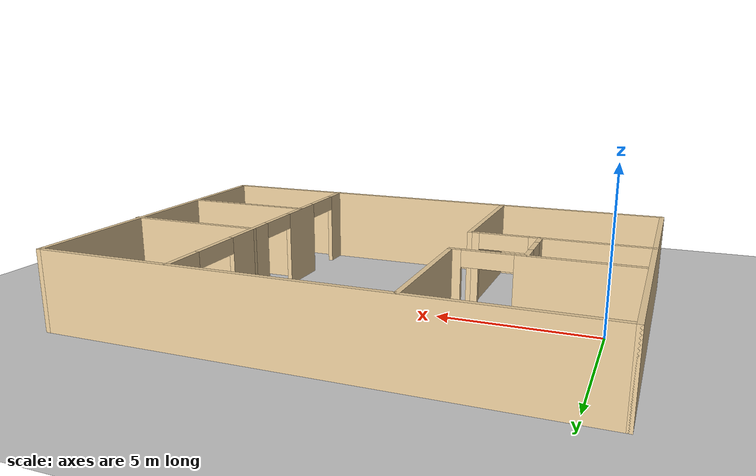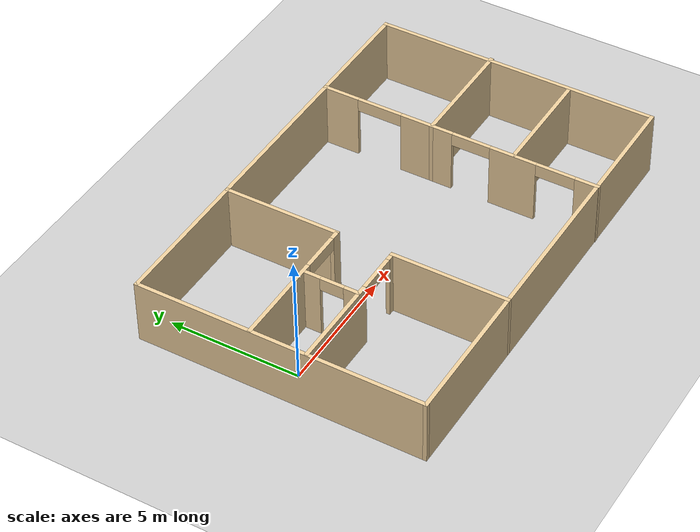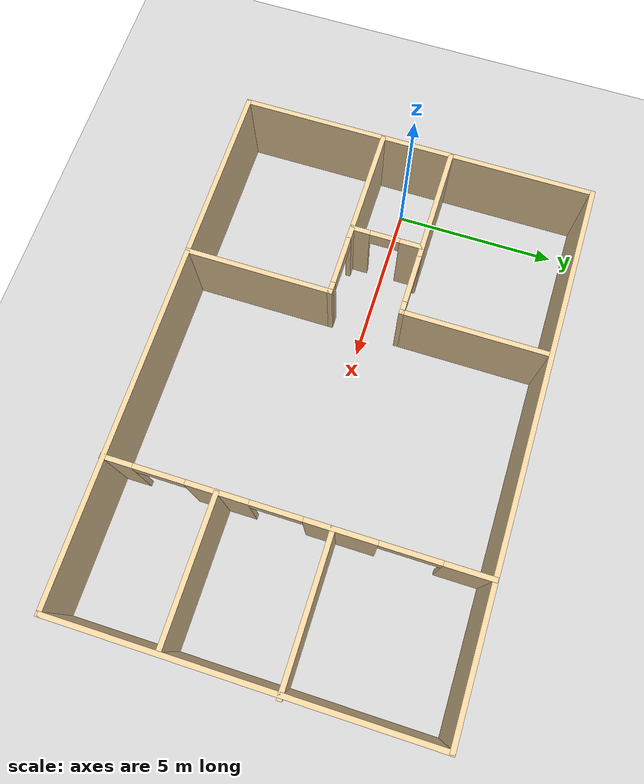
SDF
<sdf version="1.6">
 <world name="default">
  <light name="sun" type="directional">
   <pose>0 0 10 0 -0 0</pose>
   <diffuse>0.8 0.8 0.8 1</diffuse>
   <specular>0.2 0.2 0.2 1</specular>
   <attenuation>
    <range>1000</range>
    <constant>0.9</constant>
    <linear>0.01</linear>
    <quadratic>0.001</quadratic>
   </attenuation>
   <direction>-0.5 0.1 -0.9</direction>
  </light>
  <model name="ground_plane">
   <static>1</static>
   <link name="link">
    <collision name="collision">
     <geometry><plane><normal>0 0 1</normal><size>100 100</size></plane></geometry>
     <surface>
      <contact><collide_bitmask>65535</collide_bitmask></contact>
      <friction><ode><mu>100</mu><mu2>50</mu2></ode></friction>
     </surface>
    </collision>
    <visual name="visual">
     <cast_shadows>0</cast_shadows>
     <geometry><plane><normal>0 0 1</normal><size>100 100</size></plane></geometry>
     <material>
      <script><uri>file://media/materials/scripts/gazebo.material</uri><name>Gazebo/Grey</name></script>
     </material>
    </visual>
   </link>
  </model>
  <gravity>0 0 -9.8</gravity>
  <magnetic_field>6e-06 2.3e-05 -4.2e-05</magnetic_field>
  <atmosphere type="adiabatic"/>
  <physics name="default_physics" default="0" type="ode">
   <max_step_size>0.001</max_step_size>
   <real_time_factor>1</real_time_factor>
   <real_time_update_rate>1000</real_time_update_rate>
  </physics>
  <scene><ambient>0.4 0.4 0.4 1</ambient><background>0.7 0.7 0.7 1</background><shadows>1</shadows></scene>
  <spherical_coordinates>
   <surface_model>EARTH_WGS84</surface_model>
   <latitude_deg>0</latitude_deg>
   <longitude_deg>0</longitude_deg>
   <elevation>0</elevation>
   <heading_deg>0</heading_deg>
  </spherical_coordinates>
  <model name="home01">
   <pose>7 0 0 0 -0 0</pose>
   <link name="Wall_10">
    <pose>-5.37768 1.06753 0 0 -0 3.14159</pose>
    <visual name="Wall_10_Visual_0">
     <pose>-2.5478 0 1.25 0 -0 0</pose>
     <geometry><box><size>0.404399 0.15 2.5</size></box></geometry>
     <material>
      <script><uri>file://media/materials/scripts/gazebo.material</uri><name>Gazebo/Grey</name></script>
      <ambient>0.921569 0.807843 0.615686 1</ambient>
     </material>
     <meta><layer>0</layer></meta>
    </visual>
    <collision name="Wall_10_Collision_0">
     <geometry><box><size>0.404399 0.15 2.5</size></box></geometry>
     <pose>-2.5478 0 1.25 0 -0 0</pose>
    </collision>
    <visual name="Wall_10_Visual_1">
     <pose>0.9522 0 1.25 0 -0 0</pose>
     <geometry><box><size>3.5956 0.15 2.5</size></box></geometry>
     <material>
      <script><uri>file://media/materials/scripts/gazebo.material</uri><name>Gazebo/Grey</name></script>
      <ambient>0.921569 0.807843 0.615686 1</ambient>
     </material>
     <meta><layer>0</layer></meta>
    </visual>
    <collision name="Wall_10_Collision_1">
     <geometry><box><size>3.5956 0.15 2.5</size></box></geometry>
     <pose>0.9522 0 1.25 0 -0 0</pose>
    </collision>
    <visual name="Wall_10_Visual_2">
     <pose>-1.5956 0 2.25 0 -0 0</pose>
     <geometry><box><size>1.5 0.15 0.5</size></box></geometry>
     <material>
      <script><uri>file://media/materials/scripts/gazebo.material</uri><name>Gazebo/Grey</name></script>
      <ambient>0.921569 0.807843 0.615686 1</ambient>
     </material>
     <meta><layer>0</layer></meta>
    </visual>
    <collision name="Wall_10_Collision_2">
     <geometry><box><size>1.5 0.15 0.5</size></box></geometry>
     <pose>-1.5956 0 2.25 0 -0 0</pose>
    </collision>
   </link>
   <link name="Wall_12">
    <collision name="Wall_12_Collision">
     <geometry><box><size>4.5 0.15 2.5</size></box></geometry>
     <pose>0 0 1.25 0 -0 0</pose>
    </collision>
    <visual name="Wall_12_Visual">
     <pose>0 0 1.25 0 -0 0</pose>
     <geometry><box><size>4.5 0.15 2.5</size></box></geometry>
     <material>
      <script><uri>file://media/materials/scripts/gazebo.material</uri><name>Gazebo/Grey</name></script>
      <ambient>0.921569 0.807843 0.615686 1</ambient>
     </material>
     <meta><layer>0</layer></meta>
    </visual>
    <pose>-2.70268 -3.24253 0 0 -0 1.5708</pose>
   </link>
   <link name="Wall_13">
    <pose>-5.37768 -1.06753 0 0 -0 3.14159</pose>
    <visual name="Wall_13_Visual_0">
     <pose>-2.56234 0 1.25 0 -0 0</pose>
     <geometry><box><size>0.375313 0.15 2.5</size></box></geometry>
     <material>
      <script><uri>file://media/materials/scripts/gazebo.material</uri><name>Gazebo/Grey</name></script>
      <ambient>0.921569 0.807843 0.615686 1</ambient>
     </material>
     <meta><layer>0</layer></meta>
    </visual>
    <collision name="Wall_13_Collision_0">
     <geometry><box><size>0.375313 0.15 2.5</size></box></geometry>
     <pose>-2.56234 0 1.25 0 -0 0</pose>
    </collision>
    <visual name="Wall_13_Visual_1">
     <pose>0.937656 0 1.25 0 -0 0</pose>
     <geometry><box><size>3.62469 0.15 2.5</size></box></geometry>
     <material>
      <script><uri>file://media/materials/scripts/gazebo.material</uri><name>Gazebo/Grey</name></script>
      <ambient>0.921569 0.807843 0.615686 1</ambient>
     </material>
     <meta><layer>0</layer></meta>
    </visual>
    <collision name="Wall_13_Collision_1">
     <geometry><box><size>3.62469 0.15 2.5</size></box></geometry>
     <pose>0.937656 0 1.25 0 -0 0</pose>
    </collision>
    <visual name="Wall_13_Visual_2">
     <pose>-1.62469 0 2.25 0 -0 0</pose>
     <geometry><box><size>1.5 0.15 0.5</size></box></geometry>
     <material>
      <script><uri>file://media/materials/scripts/gazebo.material</uri><name>Gazebo/Grey</name></script>
      <ambient>0.921569 0.807843 0.615686 1</ambient>
     </material>
     <meta><layer>0</layer></meta>
    </visual>
    <collision name="Wall_13_Collision_2">
     <geometry><box><size>1.5 0.15 0.5</size></box></geometry>
     <pose>-1.62469 0 2.25 0 -0 0</pose>
    </collision>
   </link>
   <link name="Wall_19">
    <pose>-4.84859 0.005363 0 0 -0 -1.5708</pose>
    <visual name="Wall_19_Visual_0">
     <pose>-0.752667 0 1.25 0 -0 0</pose>
     <geometry><box><size>0.744666 0.15 2.5</size></box></geometry>
     <material>
      <script><uri>file://media/materials/scripts/gazebo.material</uri><name>Gazebo/Grey</name></script>
      <ambient>0.921569 0.807843 0.615686 1</ambient>
     </material>
     <meta><layer>0</layer></meta>
    </visual>
    <collision name="Wall_19_Collision_0">
     <geometry><box><size>0.744666 0.15 2.5</size></box></geometry>
     <pose>-0.752667 0 1.25 0 -0 0</pose>
    </collision>
    <visual name="Wall_19_Visual_1">
     <pose>0.822333 0 1.25 0 -0 0</pose>
     <geometry><box><size>0.605334 0.15 2.5</size></box></geometry>
     <material>
      <script><uri>file://media/materials/scripts/gazebo.material</uri><name>Gazebo/Grey</name></script>
      <ambient>0.921569 0.807843 0.615686 1</ambient>
     </material>
     <meta><layer>0</layer></meta>
    </visual>
    <collision name="Wall_19_Collision_1">
     <geometry><box><size>0.605334 0.15 2.5</size></box></geometry>
     <pose>0.822333 0 1.25 0 -0 0</pose>
    </collision>
    <visual name="Wall_19_Visual_2">
     <pose>0.069666 0 2.25 0 -0 0</pose>
     <geometry><box><size>0.9 0.15 0.5</size></box></geometry>
     <material>
      <script><uri>file://media/materials/scripts/gazebo.material</uri><name>Gazebo/Grey</name></script>
      <ambient>0.921569 0.807843 0.615686 1</ambient>
     </material>
     <meta><layer>0</layer></meta>
    </visual>
    <collision name="Wall_19_Collision_2">
     <geometry><box><size>0.9 0.15 0.5</size></box></geometry>
     <pose>0.069666 0 2.25 0 -0 0</pose>
    </collision>
   </link>
   <link name="Wall_21">
    <pose>3.73503 -0.00747 0 0 -0 -1.5708</pose>
    <visual name="Wall_21_Visual_0">
     <pose>-4.77731 0 1.25 0 -0 0</pose>
     <geometry><box><size>1.44539 0.15 2.5</size></box></geometry>
     <material>
      <script><uri>file://media/materials/scripts/gazebo.material</uri><name>Gazebo/Grey</name></script>
      <ambient>0.921569 0.807843 0.615686 1</ambient>
     </material>
     <meta><layer>0</layer></meta>
    </visual>
    <collision name="Wall_21_Collision_0">
     <geometry><box><size>1.44539 0.15 2.5</size></box></geometry>
     <pose>-4.77731 0 1.25 0 -0 0</pose>
    </collision>
    <visual name="Wall_21_Visual_1">
     <pose>-1.27023 0 1.25 0 -0 0</pose>
     <geometry><box><size>2.06877 0.15 2.5</size></box></geometry>
     <material>
      <script><uri>file://media/materials/scripts/gazebo.material</uri><name>Gazebo/Grey</name></script>
      <ambient>0.921569 0.807843 0.615686 1</ambient>
     </material>
     <meta><layer>0</layer></meta>
    </visual>
    <collision name="Wall_21_Collision_1">
     <geometry><box><size>2.06877 0.15 2.5</size></box></geometry>
     <pose>-1.27023 0 1.25 0 -0 0</pose>
    </collision>
    <visual name="Wall_21_Visual_2">
     <pose>2.16756 0 1.25 0 -0 0</pose>
     <geometry><box><size>1.8068 0.15 2.5</size></box></geometry>
     <material>
      <script><uri>file://media/materials/scripts/gazebo.material</uri><name>Gazebo/Grey</name></script>
      <ambient>0.921569 0.807843 0.615686 1</ambient>
     </material>
     <meta><layer>0</layer></meta>
    </visual>
    <collision name="Wall_21_Collision_2">
     <geometry><box><size>1.8068 0.15 2.5</size></box></geometry>
     <pose>2.16756 0 1.25 0 -0 0</pose>
    </collision>
    <visual name="Wall_21_Visual_3">
     <pose>5.03548 0 1.25 0 -0 0</pose>
     <geometry><box><size>0.92904 0.15 2.5</size></box></geometry>
     <material>
      <script><uri>file://media/materials/scripts/gazebo.material</uri><name>Gazebo/Grey</name></script>
      <ambient>0.921569 0.807843 0.615686 1</ambient>
     </material>
     <meta><layer>0</layer></meta>
    </visual>
    <collision name="Wall_21_Collision_3">
     <geometry><box><size>0.92904 0.15 2.5</size></box></geometry>
     <pose>5.03548 0 1.25 0 -0 0</pose>
    </collision>
    <visual name="Wall_21_Visual_4">
     <pose>-3.17961 0 2.25 0 -0 0</pose>
     <geometry><box><size>1.75 0.15 0.5</size></box></geometry>
     <material>
      <script><uri>file://media/materials/scripts/gazebo.material</uri><name>Gazebo/Grey</name></script>
      <ambient>0.921569 0.807843 0.615686 1</ambient>
     </material>
     <meta><layer>0</layer></meta>
    </visual>
    <collision name="Wall_21_Collision_4">
     <geometry><box><size>1.75 0.15 0.5</size></box></geometry>
     <pose>-3.17961 0 2.25 0 -0 0</pose>
    </collision>
    <visual name="Wall_21_Visual_5">
     <pose>0.514157 0 2.25 0 -0 0</pose>
     <geometry><box><size>1.5 0.15 0.5</size></box></geometry>
     <material>
      <script><uri>file://media/materials/scripts/gazebo.material</uri><name>Gazebo/Grey</name></script>
      <ambient>0.921569 0.807843 0.615686 1</ambient>
     </material>
     <meta><layer>0</layer></meta>
    </visual>
    <collision name="Wall_21_Collision_5">
     <geometry><box><size>1.5 0.15 0.5</size></box></geometry>
     <pose>0.514157 0 2.25 0 -0 0</pose>
    </collision>
    <visual name="Wall_21_Visual_6">
     <pose>3.82096 0 2.25 0 -0 0</pose>
     <geometry><box><size>1.5 0.15 0.5</size></box></geometry>
     <material>
      <script><uri>file://media/materials/scripts/gazebo.material</uri><name>Gazebo/Grey</name></script>
      <ambient>0.921569 0.807843 0.615686 1</ambient>
     </material>
     <meta><layer>0</layer></meta>
    </visual>
    <collision name="Wall_21_Collision_6">
     <geometry><box><size>1.5 0.15 0.5</size></box></geometry>
     <pose>3.82096 0 2.25 0 -0 0</pose>
    </collision>
   </link>
   <link name="Wall_23">
    <collision name="Wall_23_Collision">
     <geometry><box><size>4.5 0.15 2.5</size></box></geometry>
     <pose>0 0 1.25 0 -0 0</pose>
    </collision>
    <visual name="Wall_23_Visual">
     <pose>0 0 1.25 0 -0 0</pose>
     <geometry><box><size>4.5 0.15 2.5</size></box></geometry>
     <material>
      <script><uri>file://media/materials/scripts/gazebo.material</uri><name>Gazebo/Grey</name></script>
      <ambient>0.921569 0.807843 0.615686 1</ambient>
     </material>
     <meta><layer>0</layer></meta>
    </visual>
    <pose>5.91003 1.05536 0 0 -0 0</pose>
   </link>
   <link name="Wall_25">
    <collision name="Wall_25_Collision">
     <geometry><box><size>4.25 0.15 2.5</size></box></geometry>
     <pose>0 0 1.25 0 -0 0</pose>
    </collision>
    <visual name="Wall_25_Visual">
     <pose>0 0 1.25 0 -0 0</pose>
     <geometry><box><size>4.25 0.15 2.5</size></box></geometry>
     <material>
      <script><uri>file://media/materials/scripts/gazebo.material</uri><name>Gazebo/Grey</name></script>
      <ambient>0.921569 0.807843 0.615686 1</ambient>
     </material>
     <meta><layer>0</layer></meta>
    </visual>
    <pose>5.82021 -2.18108 0 0 -0 0</pose>
   </link>
   <link name="Wall_4">
    <collision name="Wall_4_Collision">
     <geometry><box><size>11 0.15 2.5</size></box></geometry>
     <pose>0 0 1.25 0 -0 0</pose>
    </collision>
    <visual name="Wall_4_Visual">
     <pose>0 0 1.25 0 -0 0</pose>
     <geometry><box><size>11 0.15 2.5</size></box></geometry>
     <material>
      <script><uri>file://media/materials/scripts/gazebo.material</uri><name>Gazebo/Grey</name></script>
      <ambient>0.921569 0.807843 0.615686 1</ambient>
     </material>
     <meta><layer>0</layer></meta>
    </visual>
    <pose>-8.08503 0.007471 0 0 -0 1.5708</pose>
   </link>
   <link name="Wall_5">
    <collision name="Wall_5_Collision">
     <geometry><box><size>16.25 0.15 2.5</size></box></geometry>
     <pose>0 0 1.25 0 -0 0</pose>
    </collision>
    <visual name="Wall_5_Visual">
     <pose>0 0 1.25 0 -0 0</pose>
     <geometry><box><size>16.25 0.15 2.5</size></box></geometry>
     <material>
      <script><uri>file://media/materials/scripts/gazebo.material</uri><name>Gazebo/Grey</name></script>
      <ambient>0.921569 0.807843 0.615686 1</ambient>
     </material>
     <meta><layer>0</layer></meta>
    </visual>
    <pose>-0.035032 5.43247 0 0 -0 0</pose>
   </link>
   <link name="Wall_6">
    <collision name="Wall_6_Collision">
     <geometry><box><size>11 0.15 2.5</size></box></geometry>
     <pose>0 0 1.25 0 -0 0</pose>
    </collision>
    <visual name="Wall_6_Visual">
     <pose>0 0 1.25 0 -0 0</pose>
     <geometry><box><size>11 0.15 2.5</size></box></geometry>
     <material>
      <script><uri>file://media/materials/scripts/gazebo.material</uri><name>Gazebo/Grey</name></script>
      <ambient>0.921569 0.807843 0.615686 1</ambient>
     </material>
     <meta><layer>0</layer></meta>
    </visual>
    <pose>8.01497 0.007471 0 0 -0 -1.5708</pose>
   </link>
   <link name="Wall_7">
    <collision name="Wall_7_Collision">
     <geometry><box><size>16.25 0.15 2.5</size></box></geometry>
     <pose>0 0 1.25 0 -0 0</pose>
    </collision>
    <visual name="Wall_7_Visual">
     <pose>0 0 1.25 0 -0 0</pose>
     <geometry><box><size>16.25 0.15 2.5</size></box></geometry>
     <material>
      <script><uri>file://media/materials/scripts/gazebo.material</uri><name>Gazebo/Grey</name></script>
      <ambient>0.921569 0.807843 0.615686 1</ambient>
     </material>
     <meta><layer>0</layer></meta>
    </visual>
    <pose>-0.035032 -5.41753 0 0 -0 3.14159</pose>
   </link>
   <link name="Wall_9">
    <collision name="Wall_9_Collision">
     <geometry><box><size>4.5 0.15 2.5</size></box></geometry>
     <pose>0 0 1.25 0 -0 0</pose>
    </collision>
    <visual name="Wall_9_Visual">
     <pose>0 0 1.25 0 -0 0</pose>
     <geometry><box><size>4.5 0.15 2.5</size></box></geometry>
     <material>
      <script><uri>file://media/materials/scripts/gazebo.material</uri><name>Gazebo/Grey</name></script>
      <ambient>0.921569 0.807843 0.615686 1</ambient>
     </material>
     <meta><layer>0</layer></meta>
    </visual>
    <pose>-2.70268 3.24253 0 0 -0 -1.5708</pose>
   </link>
   <static>1</static>
  </model>
 </world>
</sdf>
